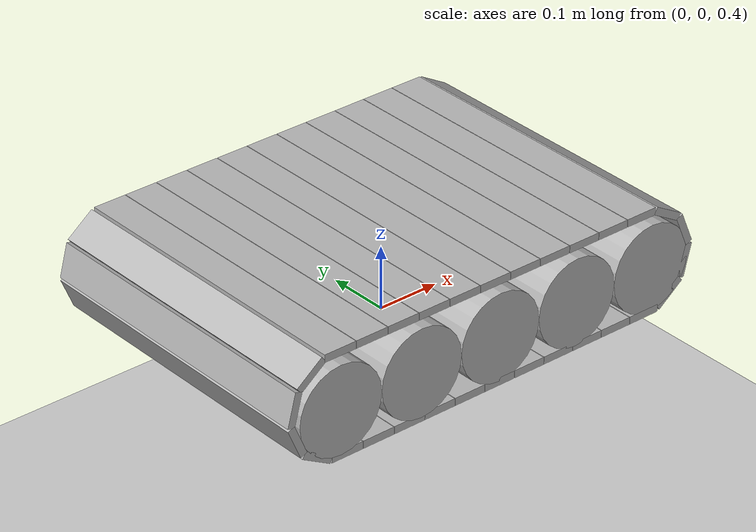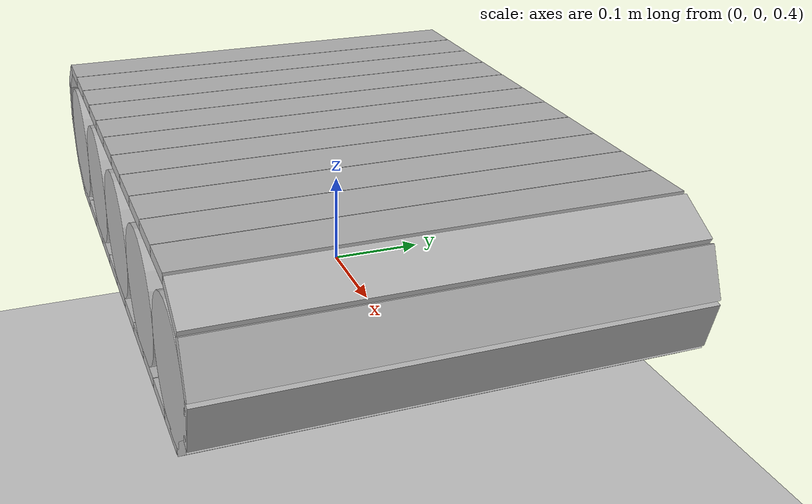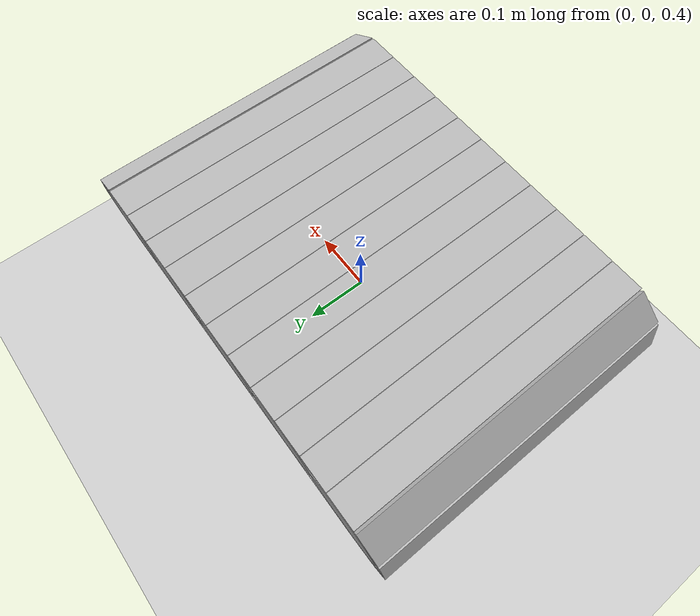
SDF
<!-- Original from: https://bitbucket.org/osrf/gazebo/raw/9053e5112a38ee4b4a62ec5231a6d2862b3faf58/worlds/treadmill.world -->
<?xml version="1.0" ?>
<sdf version="1.5">
  <world name="default">
    <include>
      <uri>model://ground_plane</uri>
    </include>
    <include>
      <uri>model://sun</uri>
    </include>

    <model name="treadmill_drums">
      <pose>0.0 0.0 0.4 0 0 0</pose>
      <link name="drum0">
        <self_collide>0</self_collide>
        <pose>0.28 0.0 0.071 1.57079632679 0 0</pose>
        <collision name="drum1_collision">
          <geometry>
            <cylinder>
              <radius>0.07</radius>
              <length>0.5</length>
            </cylinder>
          </geometry>
        </collision>
        <visual name="drum1_visual">
          <geometry>
            <cylinder>
              <radius>0.07</radius>
              <length>0.5</length>
            </cylinder>
          </geometry>
        </visual>
      </link>
      <link name="drum1">
        <self_collide>0</self_collide>
        <pose>0.14 0.0 0.071 1.57079632679 0 0</pose>
        <collision name="drum1_collision">
          <geometry>
            <cylinder>
              <radius>0.07</radius>
              <length>0.5</length>
            </cylinder>
          </geometry>
        </collision>
        <visual name="drum1_visual">
          <geometry>
            <cylinder>
              <radius>0.07</radius>
              <length>0.5</length>
            </cylinder>
          </geometry>
        </visual>
      </link>
      <link name="drum2">
        <self_collide>0</self_collide>
        <pose>0.0 0.0 0.071 1.57079632679 0 0</pose>
        <collision name="drum1_collision">
          <geometry>
            <cylinder>
              <radius>0.07</radius>
              <length>0.5</length>
            </cylinder>
          </geometry>
        </collision>
        <visual name="drum1_visual">
          <geometry>
            <cylinder>
              <radius>0.07</radius>
              <length>0.5</length>
            </cylinder>
          </geometry>
        </visual>
      </link>
      <link name="drum3">
        <self_collide>0</self_collide>
        <pose>-0.14 0.0 0.071 1.57079632679 0 0</pose>
        <collision name="drum1_collision">
          <geometry>
            <cylinder>
              <radius>0.07</radius>
              <length>0.5</length>
            </cylinder>
          </geometry>
        </collision>
        <visual name="drum1_visual">
          <geometry>
            <cylinder>
              <radius>0.07</radius>
              <length>0.5</length>
            </cylinder>
          </geometry>
        </visual>
      </link>
      <link name="drum4">
        <self_collide>0</self_collide>
        <pose>-0.28 0 0.071 1.57079632679 0 0</pose>
        <collision name="drum3_collision">
          <geometry>
            <cylinder>
              <radius>0.07</radius>
              <length>0.5</length>
            </cylinder>
          </geometry>
        </collision>
        <visual name="drum3_visual">
          <geometry>
            <cylinder>
              <radius>0.07</radius>
              <length>0.5</length>
            </cylinder>
          </geometry>
        </visual>
      </link>
      <joint type="revolute" name="drum_joint0">
        <pose>0 0 0 0 0 0</pose>
        <parent>world</parent>
        <child>drum0</child>
        <axis>
          <xyz>0 0 1</xyz>
        </axis>
      </joint>
      <joint type="revolute" name="drum_joint1">
        <pose>0 0 0 0 0 0</pose>
        <parent>world</parent>
        <child>drum1</child>
        <axis>
          <xyz>0 0 1</xyz>
        </axis>
      </joint>
      <joint type="revolute" name="drum_joint2">
        <pose>0 0 0 0 0 0</pose>
        <parent>world</parent>
        <child>drum2</child>
        <axis>
          <xyz>0 0 1</xyz>
        </axis>
      </joint>
      <joint type="revolute" name="drum_joint3">
        <pose>0 0 0 0 0 0</pose>
        <parent>world</parent>
        <child>drum3</child>
        <axis>
          <xyz>0 0 1</xyz>
        </axis>
      </joint>

      <joint type="revolute" name="drum_joint4">
        <pose>0 0 0 0 0 0</pose>
        <parent>world</parent>
        <child>drum4</child>
        <axis>
          <xyz>0 0 1</xyz>
        </axis>
      </joint>
    </model>

    <model name="treadmill_pads">
      <pose>0.0 0.0 0.4 0 0 0</pose>
      <link name="pad1">
        <self_collide>0</self_collide>
        <pose>0.0539 0 0.0005 0 0.0 0</pose>
        <collision name="pad1_collision">
          <geometry>
            <box>
              <size>0.053 0.5 0.012</size>
            </box>
          </geometry>
        </collision>
        <visual name="pad1_visual">
          <geometry>
            <box>
              <size>0.053 0.5 0.012</size>
            </box>
          </geometry>
        </visual>
      </link>
      <joint type="revolute" name="pad_joint1">
        <pose>-0.02695 0 0 0 0 0</pose>
        <parent>pad1</parent>
        <child>pad2</child>
        <axis>
          <xyz>0 1 0</xyz>
        </axis>
      </joint>
      <link name="pad2">
        <self_collide>0</self_collide>
        <pose>0.1078 0 0.0005 0 0.0 0</pose>
        <collision name="pad2_collision">
          <geometry>
            <box>
              <size>0.053 0.5 0.012</size>
            </box>
          </geometry>
        </collision>
        <visual name="pad2_visual">
          <geometry>
            <box>
              <size>0.053 0.5 0.012</size>
            </box>
          </geometry>
        </visual>
      </link>
      <joint type="revolute" name="pad_joint2">
        <pose>-0.02695 0 0 0 0 0</pose>
        <parent>pad2</parent>
        <child>pad3</child>
        <axis>
          <xyz>0 1 0</xyz>
        </axis>
      </joint>
      <link name="pad3">
        <self_collide>0</self_collide>
        <pose>0.1617 0 0.0005 0 0.0 0</pose>
        <collision name="pad3_collision">
          <geometry>
            <box>
              <size>0.053 0.5 0.012</size>
            </box>
          </geometry>
        </collision>
        <visual name="pad3_visual">
          <geometry>
            <box>
              <size>0.053 0.5 0.012</size>
            </box>
          </geometry>
        </visual>
      </link>
      <joint type="revolute" name="pad_joint3">
        <pose>-0.02695 0 0 0 0 0</pose>
        <parent>pad3</parent>
        <child>pad4</child>
        <axis>
          <xyz>0 1 0</xyz>
        </axis>
      </joint>
      <link name="pad4">
        <self_collide>0</self_collide>
        <pose>0.2156 0 0.0005 0 0.0 0</pose>
        <collision name="pad4_collision">
          <geometry>
            <box>
              <size>0.053 0.5 0.012</size>
            </box>
          </geometry>
        </collision>
        <visual name="pad4_visual">
          <geometry>
            <box>
              <size>0.053 0.5 0.012</size>
            </box>
          </geometry>
        </visual>
      </link>
      <joint type="revolute" name="pad_joint4">
        <pose>-0.02695 0 0 0 0 0</pose>
        <parent>pad4</parent>
        <child>pad5</child>
        <axis>
          <xyz>0 1 0</xyz>
        </axis>
      </joint>
      <link name="pad5">
        <self_collide>0</self_collide>
        <pose>0.2695 0 0.0005 0 0.0 0</pose>
        <collision name="pad5_collision">
          <geometry>
            <box>
              <size>0.053 0.5 0.012</size>
            </box>
          </geometry>
        </collision>
        <visual name="pad5_visual">
          <geometry>
            <box>
              <size>0.053 0.5 0.012</size>
            </box>
          </geometry>
        </visual>
      </link>
      <joint type="revolute" name="pad_joint5">
        <pose>-0.02695 0 0 0 0 0</pose>
        <parent>pad5</parent>
        <child>pad6</child>
        <axis>
          <xyz>0 1 0</xyz>
        </axis>
      </joint>
      <link name="pad6">
        <self_collide>0</self_collide>
        <pose>0.317803275993 0 0.0169420225146 0 -0.656178717991 0</pose>
        <collision name="pad6_collision">
          <geometry>
            <box>
              <size>0.053 0.5 0.012</size>
            </box>
          </geometry>
        </collision>
        <visual name="pad6_visual">
          <geometry>
            <box>
              <size>0.053 0.5 0.012</size>
            </box>
          </geometry>
        </visual>
      </link>
      <joint type="revolute" name="pad_joint6">
        <pose>-0.02695 0 0 0 0 0</pose>
        <parent>pad6</parent>
        <child>pad7</child>
        <axis>
          <xyz>0 1 0</xyz>
        </axis>
      </joint>
      <link name="pad7">
        <self_collide>0</self_collide>
        <pose>0.346044206578 0 0.0594390390652 0 -1.31235743598 0</pose>
        <collision name="pad7_collision">
          <geometry>
            <box>
              <size>0.053 0.5 0.012</size>
            </box>
          </geometry>
        </collision>
        <visual name="pad7_visual">
          <geometry>
            <box>
              <size>0.053 0.5 0.012</size>
            </box>
          </geometry>
        </visual>
      </link>
      <joint type="revolute" name="pad_joint7">
        <pose>-0.02695 0 0 0 0 0</pose>
        <parent>pad7</parent>
        <child>pad8</child>
        <axis>
          <xyz>0 1 0</xyz>
        </axis>
      </joint>
      <link name="pad8">
        <self_collide>0</self_collide>
        <pose>0.342493166955 0 0.110340283584 0 -1.96853615397 0</pose>
        <collision name="pad8_collision">
          <geometry>
            <box>
              <size>0.053 0.5 0.012</size>
            </box>
          </geometry>
        </collision>
        <visual name="pad8_visual">
          <geometry>
            <box>
              <size>0.053 0.5 0.012</size>
            </box>
          </geometry>
        </visual>
      </link>
      <joint type="revolute" name="pad_joint8">
        <pose>-0.02695 0 0 0 0 0</pose>
        <parent>pad8</parent>
        <child>pad9</child>
        <axis>
          <xyz>0 1 0</xyz>
        </axis>
      </joint>
      <link name="pad9">
        <self_collide>0</self_collide>
        <pose>0.308625050534 0 0.148504367042 0 -2.62471487197 0</pose>
        <collision name="pad9_collision">
          <geometry>
            <box>
              <size>0.053 0.5 0.012</size>
            </box>
          </geometry>
        </collision>
        <visual name="pad9_visual">
          <geometry>
            <box>
              <size>0.053 0.5 0.012</size>
            </box>
          </geometry>
        </visual>
      </link>
      <joint type="revolute" name="pad_joint9">
        <pose>-0.02695 0 0 0 0 0</pose>
        <parent>pad9</parent>
        <child>pad10</child>
        <axis>
          <xyz>0 1 0</xyz>
        </axis>
      </joint>
      <link name="pad10">
        <self_collide>0</self_collide>
        <pose>0.258245628329 0 0.161822200016 0 3.14159265359 0</pose>
        <collision name="pad10_collision">
          <geometry>
            <box>
              <size>0.053 0.5 0.012</size>
            </box>
          </geometry>
        </collision>
        <visual name="pad10_visual">
          <geometry>
            <box>
              <size>0.053 0.5 0.012</size>
            </box>
          </geometry>
        </visual>
      </link>
      <joint type="revolute" name="pad_joint10">
        <pose>-0.02695 0 0 0 0 0</pose>
        <parent>pad10</parent>
        <child>pad11</child>
        <axis>
          <xyz>0 1 0</xyz>
        </axis>
      </joint>
      <link name="pad11">
        <self_collide>0</self_collide>
        <pose>0.204345628329 0 0.161822200016 0 3.14159265359 0</pose>
        <collision name="pad11_collision">
          <geometry>
            <box>
              <size>0.053 0.5 0.012</size>
            </box>
          </geometry>
        </collision>
        <visual name="pad11_visual">
          <geometry>
            <box>
              <size>0.053 0.5 0.012</size>
            </box>
          </geometry>
        </visual>
      </link>
      <joint type="revolute" name="pad_joint11">
        <pose>-0.02695 0 0 0 0 0</pose>
        <parent>pad11</parent>
        <child>pad12</child>
        <axis>
          <xyz>0 1 0</xyz>
        </axis>
      </joint>
      <link name="pad12">
        <self_collide>0</self_collide>
        <pose>0.150445628329 0 0.161822200016 0 3.14159265359 0</pose>
        <collision name="pad12_collision">
          <geometry>
            <box>
              <size>0.053 0.5 0.012</size>
            </box>
          </geometry>
        </collision>
        <visual name="pad12_visual">
          <geometry>
            <box>
              <size>0.053 0.5 0.012</size>
            </box>
          </geometry>
        </visual>
      </link>
      <joint type="revolute" name="pad_joint12">
        <pose>-0.02695 0 0 0 0 0</pose>
        <parent>pad12</parent>
        <child>pad13</child>
        <axis>
          <xyz>0 1 0</xyz>
        </axis>
      </joint>
      <link name="pad13">
        <self_collide>0</self_collide>
        <pose>0.0965456283288 0 0.161822200016 0 3.14159265359 0</pose>
        <collision name="pad13_collision">
          <geometry>
            <box>
              <size>0.053 0.5 0.012</size>
            </box>
          </geometry>
        </collision>
        <visual name="pad13_visual">
          <geometry>
            <box>
              <size>0.053 0.5 0.012</size>
            </box>
          </geometry>
        </visual>
      </link>
      <joint type="revolute" name="pad_joint13">
        <pose>-0.02695 0 0 0 0 0</pose>
        <parent>pad13</parent>
        <child>pad14</child>
        <axis>
          <xyz>0 1 0</xyz>
        </axis>
      </joint>
      <link name="pad14">
        <self_collide>0</self_collide>
        <pose>0.0426456283288 0 0.161822200016 0 3.14159265359 0</pose>
        <collision name="pad14_collision">
          <geometry>
            <box>
              <size>0.053 0.5 0.012</size>
            </box>
          </geometry>
        </collision>
        <visual name="pad14_visual">
          <geometry>
            <box>
              <size>0.053 0.5 0.012</size>
            </box>
          </geometry>
        </visual>
      </link>
      <joint type="revolute" name="pad_joint14">
        <pose>-0.02695 0 0 0 0 0</pose>
        <parent>pad14</parent>
        <child>pad15</child>
        <axis>
          <xyz>0 1 0</xyz>
        </axis>
      </joint>
      <link name="pad15">
        <self_collide>0</self_collide>
        <pose>-0.0112543716712 0 0.161822200016 0 3.14159265359 0</pose>
        <collision name="pad15_collision">
          <geometry>
            <box>
              <size>0.053 0.5 0.012</size>
            </box>
          </geometry>
        </collision>
        <visual name="pad15_visual">
          <geometry>
            <box>
              <size>0.053 0.5 0.012</size>
            </box>
          </geometry>
        </visual>
      </link>
      <joint type="revolute" name="pad_joint15">
        <pose>-0.02695 0 0 0 0 0</pose>
        <parent>pad15</parent>
        <child>pad16</child>
        <axis>
          <xyz>0 1 0</xyz>
        </axis>
      </joint>
      <link name="pad16">
        <self_collide>0</self_collide>
        <pose>-0.0651543716712 0 0.161822200016 0 3.14159265359 0</pose>
        <collision name="pad16_collision">
          <geometry>
            <box>
              <size>0.053 0.5 0.012</size>
            </box>
          </geometry>
        </collision>
        <visual name="pad16_visual">
          <geometry>
            <box>
              <size>0.053 0.5 0.012</size>
            </box>
          </geometry>
        </visual>
      </link>
      <joint type="revolute" name="pad_joint16">
        <pose>-0.02695 0 0 0 0 0</pose>
        <parent>pad16</parent>
        <child>pad17</child>
        <axis>
          <xyz>0 1 0</xyz>
        </axis>
      </joint>
      <link name="pad17">
        <self_collide>0</self_collide>
        <pose>-0.119054371671 0 0.161822200016 0 3.14159265359 0</pose>
        <collision name="pad17_collision">
          <geometry>
            <box>
              <size>0.053 0.5 0.012</size>
            </box>
          </geometry>
        </collision>
        <visual name="pad17_visual">
          <geometry>
            <box>
              <size>0.053 0.5 0.012</size>
            </box>
          </geometry>
        </visual>
      </link>
      <joint type="revolute" name="pad_joint17">
        <pose>-0.02695 0 0 0 0 0</pose>
        <parent>pad17</parent>
        <child>pad18</child>
        <axis>
          <xyz>0 1 0</xyz>
        </axis>
      </joint>
      <link name="pad18">
        <self_collide>0</self_collide>
        <pose>-0.172954371671 0 0.161822200016 0 3.14159265359 0</pose>
        <collision name="pad18_collision">
          <geometry>
            <box>
              <size>0.053 0.5 0.012</size>
            </box>
          </geometry>
        </collision>
        <visual name="pad18_visual">
          <geometry>
            <box>
              <size>0.053 0.5 0.012</size>
            </box>
          </geometry>
        </visual>
      </link>
      <joint type="revolute" name="pad_joint18">
        <pose>-0.02695 0 0 0 0 0</pose>
        <parent>pad18</parent>
        <child>pad19</child>
        <axis>
          <xyz>0 1 0</xyz>
        </axis>
      </joint>
      <link name="pad19">
        <self_collide>0</self_collide>
        <pose>-0.226854371671 0 0.161822200016 0 3.14159265359 0</pose>
        <collision name="pad19_collision">
          <geometry>
            <box>
              <size>0.053 0.5 0.012</size>
            </box>
          </geometry>
        </collision>
        <visual name="pad19_visual">
          <geometry>
            <box>
              <size>0.053 0.5 0.012</size>
            </box>
          </geometry>
        </visual>
      </link>
      <joint type="revolute" name="pad_joint19">
        <pose>-0.02695 0 0 0 0 0</pose>
        <parent>pad19</parent>
        <child>pad20</child>
        <axis>
          <xyz>0 1 0</xyz>
        </axis>
      </joint>
      <link name="pad20">
        <self_collide>0</self_collide>
        <pose>-0.280754371671 0 0.161822200016 0 3.14159265359 0</pose>
        <collision name="pad20_collision">
          <geometry>
            <box>
              <size>0.053 0.5 0.012</size>
            </box>
          </geometry>
        </collision>
        <visual name="pad20_visual">
          <geometry>
            <box>
              <size>0.053 0.5 0.012</size>
            </box>
          </geometry>
        </visual>
      </link>
      <joint type="revolute" name="pad_joint20">
        <pose>-0.02695 0 0 0 0 0</pose>
        <parent>pad20</parent>
        <child>pad21</child>
        <axis>
          <xyz>0 1 0</xyz>
        </axis>
      </joint>
      <link name="pad21">
        <self_collide>0</self_collide>
        <pose>-0.329057647664 0 0.145380177501 0 2.4854139356 0</pose>
        <collision name="pad21_collision">
          <geometry>
            <box>
              <size>0.053 0.5 0.012</size>
            </box>
          </geometry>
        </collision>
        <visual name="pad21_visual">
          <geometry>
            <box>
              <size>0.053 0.5 0.012</size>
            </box>
          </geometry>
        </visual>
      </link>
      <joint type="revolute" name="pad_joint21">
        <pose>-0.02695 0 0 0 0 0</pose>
        <parent>pad21</parent>
        <child>pad22</child>
        <axis>
          <xyz>0 1 0</xyz>
        </axis>
      </joint>
      <link name="pad22">
        <self_collide>0</self_collide>
        <pose>-0.357298578249 0 0.10288316095 0 1.82923521761 0</pose>
        <collision name="pad22_collision">
          <geometry>
            <box>
              <size>0.053 0.5 0.012</size>
            </box>
          </geometry>
        </collision>
        <visual name="pad22_visual">
          <geometry>
            <box>
              <size>0.053 0.5 0.012</size>
            </box>
          </geometry>
        </visual>
      </link>
      <joint type="revolute" name="pad_joint22">
        <pose>-0.02695 0 0 0 0 0</pose>
        <parent>pad22</parent>
        <child>pad23</child>
        <axis>
          <xyz>0 1 0</xyz>
        </axis>
      </joint>
      <link name="pad23">
        <self_collide>0</self_collide>
        <pose>-0.353747538626 0 0.0519819164311 0 1.17305649962 0</pose>
        <collision name="pad23_collision">
          <geometry>
            <box>
              <size>0.053 0.5 0.012</size>
            </box>
          </geometry>
        </collision>
        <visual name="pad23_visual">
          <geometry>
            <box>
              <size>0.053 0.5 0.012</size>
            </box>
          </geometry>
        </visual>
      </link>
      <joint type="revolute" name="pad_joint23">
        <pose>-0.02695 0 0 0 0 0</pose>
        <parent>pad23</parent>
        <child>pad24</child>
        <axis>
          <xyz>0 1 0</xyz>
        </axis>
      </joint>
      <link name="pad24">
        <self_collide>0</self_collide>
        <pose>-0.319879422205 0 0.0138178329739 0 0.516877781624 0</pose>
        <collision name="pad24_collision">
          <geometry>
            <box>
              <size>0.053 0.5 0.012</size>
            </box>
          </geometry>
        </collision>
        <visual name="pad24_visual">
          <geometry>
            <box>
              <size>0.053 0.5 0.012</size>
            </box>
          </geometry>
        </visual>
      </link>
      <joint type="revolute" name="pad_joint24">
        <pose>-0.02695 0 0 0 0 0</pose>
        <parent>pad24</parent>
        <child>pad25</child>
        <axis>
          <xyz>0 1 0</xyz>
        </axis>
      </joint>
      <link name="pad25">
        <self_collide>0</self_collide>
        <pose>-0.2695 0 0.000499999999999 0 -1.34264886535e-15 0</pose>
        <collision name="pad25_collision">
          <geometry>
            <box>
              <size>0.053 0.5 0.012</size>
            </box>
          </geometry>
        </collision>
        <visual name="pad25_visual">
          <geometry>
            <box>
              <size>0.053 0.5 0.012</size>
            </box>
          </geometry>
        </visual>
      </link>
      <joint type="revolute" name="pad_joint25">
        <pose>-0.02695 0 0 0 0 0</pose>
        <parent>pad25</parent>
        <child>pad26</child>
        <axis>
          <xyz>0 1 0</xyz>
        </axis>
      </joint>
      <link name="pad26">
        <self_collide>0</self_collide>
        <pose>-0.2156 0 0.0005 0 -1.83250758501e-15 0</pose>
        <collision name="pad26_collision">
          <geometry>
            <box>
              <size>0.053 0.5 0.012</size>
            </box>
          </geometry>
        </collision>
        <visual name="pad26_visual">
          <geometry>
            <box>
              <size>0.053 0.5 0.012</size>
            </box>
          </geometry>
        </visual>
      </link>
      <joint type="revolute" name="pad_joint26">
        <pose>-0.02695 0 0 0 0 0</pose>
        <parent>pad26</parent>
        <child>pad27</child>
        <axis>
          <xyz>0 1 0</xyz>
        </axis>
      </joint>
      <link name="pad27">
        <self_collide>0</self_collide>
        <pose>-0.1617 0 0.0005 0 -1.83250758501e-15 0</pose>
        <collision name="pad27_collision">
          <geometry>
            <box>
              <size>0.053 0.5 0.012</size>
            </box>
          </geometry>
        </collision>
        <visual name="pad27_visual">
          <geometry>
            <box>
              <size>0.053 0.5 0.012</size>
            </box>
          </geometry>
        </visual>
      </link>
      <joint type="revolute" name="pad_joint27">
        <pose>-0.02695 0 0 0 0 0</pose>
        <parent>pad27</parent>
        <child>pad28</child>
        <axis>
          <xyz>0 1 0</xyz>
        </axis>
      </joint>
      <link name="pad28">
        <self_collide>0</self_collide>
        <pose>-0.1078 0 0.0005 0 -1.83250758501e-15 0</pose>
        <collision name="pad28_collision">
          <geometry>
            <box>
              <size>0.053 0.5 0.012</size>
            </box>
          </geometry>
        </collision>
        <visual name="pad28_visual">
          <geometry>
            <box>
              <size>0.053 0.5 0.012</size>
            </box>
          </geometry>
        </visual>
      </link>
      <joint type="revolute" name="pad_joint28">
        <pose>-0.02695 0 0 0 0 0</pose>
        <parent>pad28</parent>
        <child>pad29</child>
        <axis>
          <xyz>0 1 0</xyz>
        </axis>
      </joint>
      <link name="pad29">
        <self_collide>0</self_collide>
        <pose>-0.0539 0 0.0005 0 -1.83250758501e-15 0</pose>
        <collision name="pad29_collision">
          <geometry>
            <box>
              <size>0.053 0.5 0.012</size>
            </box>
          </geometry>
        </collision>
        <visual name="pad29_visual">
          <geometry>
            <box>
              <size>0.053 0.5 0.012</size>
            </box>
          </geometry>
        </visual>
      </link>
      <joint type="revolute" name="pad_joint29">
        <pose>-0.02695 0 0 0 0 0</pose>
        <parent>pad29</parent>
        <child>pad30</child>
        <axis>
          <xyz>0 1 0</xyz>
        </axis>
      </joint>
      <link name="pad30">
        <self_collide>0</self_collide>
        <pose>0 0 0.0005 0 -1.83250758501e-15 0</pose>
        <collision name="pad30_collision">
          <geometry>
            <box>
              <size>0.053 0.5 0.012</size>
            </box>
          </geometry>
        </collision>
        <visual name="pad30_visual">
          <geometry>
            <box>
              <size>0.053 0.5 0.012</size>
            </box>
          </geometry>
        </visual>
      </link>

      <joint type="revolute" name="pad_joint31">
        <pose>-0.02695 0 0 0 0 0</pose>
        <parent>pad30</parent>
        <child>pad1</child>
        <axis>
          <xyz>0 1 0</xyz>
        </axis>
      </joint>
    </model>
  </world>
</sdf>
